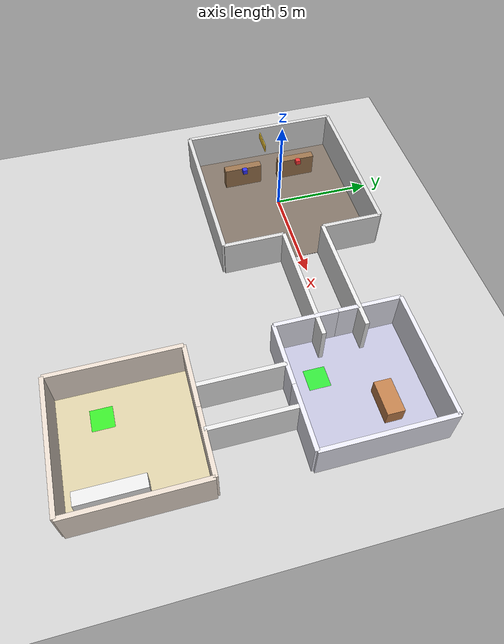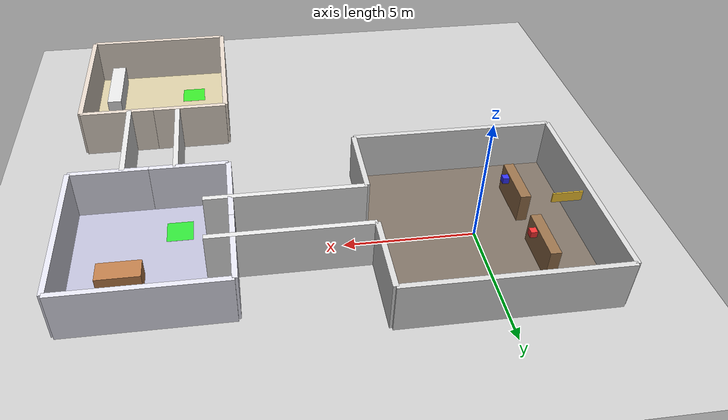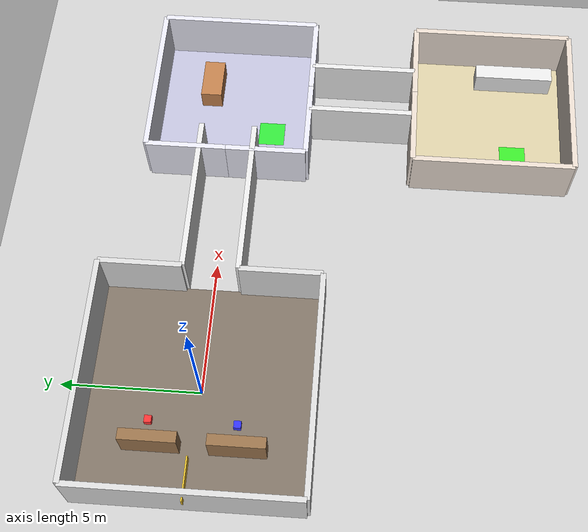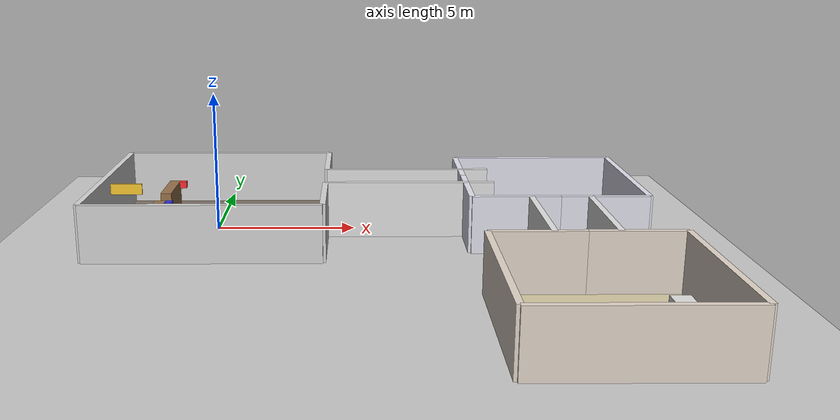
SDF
<?xml version="1.0" ?>
<sdf version="1.6">
  <world name="logistics_world">

    <!-- Physics -->
    <physics type="ode">
      <real_time_update_rate>1000.0</real_time_update_rate>
      <max_step_size>0.001</max_step_size>
      <real_time_factor>1</real_time_factor>
    </physics>

    <!-- Lighting -->
    <light name="sun" type="directional">
      <cast_shadows>true</cast_shadows>
      <pose>0 0 10 0 0 0</pose>
      <diffuse>0.8 0.8 0.8 1</diffuse>
      <specular>0.2 0.2 0.2 1</specular>
      <direction>-0.5 0.1 -0.9</direction>
    </light>

    <light name="ceiling_light_warehouse" type="point">
      <pose>0 0 4 0 0 0</pose>
      <diffuse>1.0 0.95 0.8 1</diffuse>
      <specular>0.1 0.1 0.1 1</specular>
      <attenuation>
        <range>20</range>
        <linear>0.05</linear>
      </attenuation>
    </light>

    <!-- Ground plane -->
    <model name="ground_plane">
      <static>true</static>
      <link name="link">
        <collision name="collision">
          <geometry><plane><normal>0 0 1</normal><size>100 100</size></plane></geometry>
          <surface><friction><ode><mu>100</mu><mu2>50</mu2></ode></friction></surface>
        </collision>
        <visual name="visual">
          <cast_shadows>false</cast_shadows>
          <geometry><plane><normal>0 0 1</normal><size>100 100</size></plane></geometry>
          <material>
            <script>
              <uri>file://media/materials/scripts/gazebo.material</uri>
              <name>Gazebo/Grey</name>
            </script>
          </material>
        </visual>
      </link>
    </model>

    <!-- ═══════════════════════════════════════════════
         WAREHOUSE ROOM  (center: 0, 0)  8×8 m
         ═══════════════════════════════════════════════ -->

    <!-- Warehouse floor (darker) -->
    <model name="warehouse_floor">
      <static>true</static>
      <pose>0 0 0.01 0 0 0</pose>
      <link name="link">
        <visual name="visual">
          <geometry><box><size>8 8 0.02</size></box></geometry>
          <material><ambient>0.4 0.35 0.3 1</ambient><diffuse>0.5 0.45 0.4 1</diffuse></material>
        </visual>
      </link>
    </model>

    <!-- Warehouse label -->
    <model name="warehouse_sign">
      <static>true</static>
      <pose>-3.5 0 1.5 0 0 1.5708</pose>
      <link name="link">
        <visual name="visual">
          <geometry><box><size>0.05 1.5 0.4</size></box></geometry>
          <material><ambient>0.8 0.6 0.1 1</ambient><diffuse>1.0 0.8 0.2 1</diffuse></material>
        </visual>
      </link>
    </model>

    <!-- Warehouse walls -->
    <model name="warehouse_wall_north">
      <static>true</static><pose>0 4 1 0 0 0</pose>
      <link name="link">
        <collision name="c"><geometry><box><size>8 0.2 2</size></box></geometry></collision>
        <visual name="v"><geometry><box><size>8 0.2 2</size></box></geometry>
          <material><ambient>0.85 0.85 0.85 1</ambient></material></visual>
      </link>
    </model>
    <model name="warehouse_wall_south">
      <static>true</static><pose>0 -4 1 0 0 0</pose>
      <link name="link">
        <collision name="c"><geometry><box><size>8 0.2 2</size></box></geometry></collision>
        <visual name="v"><geometry><box><size>8 0.2 2</size></box></geometry>
          <material><ambient>0.85 0.85 0.85 1</ambient></material></visual>
      </link>
    </model>
    <model name="warehouse_wall_west">
      <static>true</static><pose>-4 0 1 0 0 0</pose>
      <link name="link">
        <collision name="c"><geometry><box><size>0.2 8 2</size></box></geometry></collision>
        <visual name="v"><geometry><box><size>0.2 8 2</size></box></geometry>
          <material><ambient>0.85 0.85 0.85 1</ambient></material></visual>
      </link>
    </model>
    <!-- East wall of warehouse has a doorway gap to office corridor -->
    <model name="warehouse_wall_east_top">
      <static>true</static><pose>4 2.5 1 0 0 0</pose>
      <link name="link">
        <collision name="c"><geometry><box><size>0.2 3 2</size></box></geometry></collision>
        <visual name="v"><geometry><box><size>0.2 3 2</size></box></geometry>
          <material><ambient>0.85 0.85 0.85 1</ambient></material></visual>
      </link>
    </model>
    <model name="warehouse_wall_east_bottom">
      <static>true</static><pose>4 -2.5 1 0 0 0</pose>
      <link name="link">
        <collision name="c"><geometry><box><size>0.2 3 2</size></box></geometry></collision>
        <visual name="v"><geometry><box><size>0.2 3 2</size></box></geometry>
          <material><ambient>0.85 0.85 0.85 1</ambient></material></visual>
      </link>
    </model>

    <!-- Warehouse shelves -->
    <model name="shelf_1">
      <static>true</static><pose>-2 1.5 0.6 0 0 0</pose>
      <link name="link">
        <collision name="c"><geometry><box><size>0.4 2.0 1.2</size></box></geometry></collision>
        <visual name="v"><geometry><box><size>0.4 2.0 1.2</size></box></geometry>
          <material><ambient>0.5 0.35 0.2 1</ambient><diffuse>0.6 0.45 0.3 1</diffuse></material></visual>
      </link>
    </model>
    <model name="shelf_2">
      <static>true</static><pose>-2 -1.5 0.6 0 0 0</pose>
      <link name="link">
        <collision name="c"><geometry><box><size>0.4 2.0 1.2</size></box></geometry></collision>
        <visual name="v"><geometry><box><size>0.4 2.0 1.2</size></box></geometry>
          <material><ambient>0.5 0.35 0.2 1</ambient><diffuse>0.6 0.45 0.3 1</diffuse></material></visual>
      </link>
    </model>

    <!-- Package 1 (red box) -->
    <model name="package1">
      <static>false</static><pose>-1.5 1.5 1.3 0 0 0</pose>
      <link name="link">
        <inertial><mass>1.0</mass><inertia><ixx>0.01</ixx><iyy>0.01</iyy><izz>0.01</izz></inertia></inertial>
        <collision name="c"><geometry><box><size>0.25 0.25 0.25</size></box></geometry></collision>
        <visual name="v"><geometry><box><size>0.25 0.25 0.25</size></box></geometry>
          <material><ambient>0.8 0.1 0.1 1</ambient><diffuse>1.0 0.2 0.2 1</diffuse></material></visual>
      </link>
    </model>

    <!-- Package 2 (blue box) -->
    <model name="package2">
      <static>false</static><pose>-1.5 -1.5 1.3 0 0 0</pose>
      <link name="link">
        <inertial><mass>1.0</mass><inertia><ixx>0.01</ixx><iyy>0.01</iyy><izz>0.01</izz></inertia></inertial>
        <collision name="c"><geometry><box><size>0.25 0.25 0.25</size></box></geometry></collision>
        <visual name="v"><geometry><box><size>0.25 0.25 0.25</size></box></geometry>
          <material><ambient>0.1 0.1 0.8 1</ambient><diffuse>0.2 0.2 1.0 1</diffuse></material></visual>
      </link>
    </model>

    <!-- ═══════════════════════════════════════════════
         CORRIDOR  warehouse->office  (x: 4->10, y: -1->1)
         ═══════════════════════════════════════════════ -->
    <model name="corridor_wall_north">
      <static>true</static><pose>7 1 1 0 0 0</pose>
      <link name="link">
        <collision name="c"><geometry><box><size>6 0.2 2</size></box></geometry></collision>
        <visual name="v"><geometry><box><size>6 0.2 2</size></box></geometry>
          <material><ambient>0.9 0.9 0.9 1</ambient></material></visual>
      </link>
    </model>
    <model name="corridor_wall_south">
      <static>true</static><pose>7 -1 1 0 0 0</pose>
      <link name="link">
        <collision name="c"><geometry><box><size>6 0.2 2</size></box></geometry></collision>
        <visual name="v"><geometry><box><size>6 0.2 2</size></box></geometry>
          <material><ambient>0.9 0.9 0.9 1</ambient></material></visual>
      </link>
    </model>

    <!-- ═══════════════════════════════════════════════
         OFFICE ROOM  (center: 12, 0)  6×6 m
         ═══════════════════════════════════════════════ -->
    <model name="office_floor">
      <static>true</static><pose>12 0 0.01 0 0 0</pose>
      <link name="link">
        <visual name="visual">
          <geometry><box><size>6 6 0.02</size></box></geometry>
          <material><ambient>0.6 0.6 0.7 1</ambient><diffuse>0.75 0.75 0.85 1</diffuse></material>
        </visual>
      </link>
    </model>

    <model name="office_wall_north">
      <static>true</static><pose>12 3 1 0 0 0</pose>
      <link name="link">
        <collision name="c"><geometry><box><size>6 0.2 2</size></box></geometry></collision>
        <visual name="v"><geometry><box><size>6 0.2 2</size></box></geometry>
          <material><ambient>0.9 0.9 0.95 1</ambient></material></visual>
      </link>
    </model>
    <model name="office_wall_east">
      <static>true</static><pose>15 0 1 0 0 0</pose>
      <link name="link">
        <collision name="c"><geometry><box><size>0.2 6 2</size></box></geometry></collision>
        <visual name="v"><geometry><box><size>0.2 6 2</size></box></geometry>
          <material><ambient>0.9 0.9 0.95 1</ambient></material></visual>
      </link>
    </model>
    <!-- Office south wall with doorway to kitchen corridor -->
    <model name="office_wall_south_left">
      <static>true</static><pose>10.5 -3 1 0 0 0</pose>
      <link name="link">
        <collision name="c"><geometry><box><size>3 0.2 2</size></box></geometry></collision>
        <visual name="v"><geometry><box><size>3 0.2 2</size></box></geometry>
          <material><ambient>0.9 0.9 0.95 1</ambient></material></visual>
      </link>
    </model>
    <model name="office_wall_south_right">
      <static>true</static><pose>13.5 -3 1 0 0 0</pose>
      <link name="link">
        <collision name="c"><geometry><box><size>3 0.2 2</size></box></geometry></collision>
        <visual name="v"><geometry><box><size>3 0.2 2</size></box></geometry>
          <material><ambient>0.9 0.9 0.95 1</ambient></material></visual>
      </link>
    </model>
    <!-- Office west wall with doorway -->
    <model name="office_wall_west_top">
      <static>true</static><pose>9 1.5 1 0 0 0</pose>
      <link name="link">
        <collision name="c"><geometry><box><size>0.2 3 2</size></box></geometry></collision>
        <visual name="v"><geometry><box><size>0.2 3 2</size></box></geometry>
          <material><ambient>0.9 0.9 0.95 1</ambient></material></visual>
      </link>
    </model>
    <model name="office_wall_west_bottom">
      <static>true</static><pose>9 -1.5 1 0 0 0</pose>
      <link name="link">
        <collision name="c"><geometry><box><size>0.2 3 2</size></box></geometry></collision>
        <visual name="v"><geometry><box><size>0.2 3 2</size></box></geometry>
          <material><ambient>0.9 0.9 0.95 1</ambient></material></visual>
      </link>
    </model>

    <!-- Office desk -->
    <model name="office_desk">
      <static>true</static><pose>13 1 0.4 0 0 0</pose>
      <link name="link">
        <collision name="c"><geometry><box><size>1.6 0.8 0.8</size></box></geometry></collision>
        <visual name="v"><geometry><box><size>1.6 0.8 0.8</size></box></geometry>
          <material><ambient>0.6 0.4 0.2 1</ambient><diffuse>0.75 0.5 0.3 1</diffuse></material></visual>
      </link>
    </model>

    <!-- Delivery zone marker (office) -->
    <model name="office_delivery_zone">
      <static>true</static><pose>11 -1.5 0.02 0 0 0</pose>
      <link name="link">
        <visual name="v">
          <geometry><box><size>1.0 1.0 0.01</size></box></geometry>
          <material><ambient>0.0 0.8 0.0 1</ambient><diffuse>0.0 1.0 0.0 0.7</diffuse></material>
        </visual>
      </link>
    </model>

    <!-- ═══════════════════════════════════════════════
         CORRIDOR  office->kitchen  (x: 11->13, y: -3->-7)
         ═══════════════════════════════════════════════ -->
    <model name="corridor2_wall_west">
      <static>true</static><pose>11 -5 1 0 0 0</pose>
      <link name="link">
        <collision name="c"><geometry><box><size>0.2 4 2</size></box></geometry></collision>
        <visual name="v"><geometry><box><size>0.2 4 2</size></box></geometry>
          <material><ambient>0.9 0.9 0.9 1</ambient></material></visual>
      </link>
    </model>
    <model name="corridor2_wall_east">
      <static>true</static><pose>13 -5 1 0 0 0</pose>
      <link name="link">
        <collision name="c"><geometry><box><size>0.2 4 2</size></box></geometry></collision>
        <visual name="v"><geometry><box><size>0.2 4 2</size></box></geometry>
          <material><ambient>0.9 0.9 0.9 1</ambient></material></visual>
      </link>
    </model>

    <!-- ═══════════════════════════════════════════════
         KITCHEN ROOM  (center: 12, -10)  6×6 m
         ═══════════════════════════════════════════════ -->
    <model name="kitchen_floor">
      <static>true</static><pose>12 -10 0.01 0 0 0</pose>
      <link name="link">
        <visual name="visual">
          <geometry><box><size>6 6 0.02</size></box></geometry>
          <material><ambient>0.7 0.65 0.5 1</ambient><diffuse>0.85 0.8 0.65 1</diffuse></material>
        </visual>
      </link>
    </model>

    <model name="kitchen_wall_south">
      <static>true</static><pose>12 -13 1 0 0 0</pose>
      <link name="link">
        <collision name="c"><geometry><box><size>6 0.2 2</size></box></geometry></collision>
        <visual name="v"><geometry><box><size>6 0.2 2</size></box></geometry>
          <material><ambient>0.9 0.85 0.8 1</ambient></material></visual>
      </link>
    </model>
    <model name="kitchen_wall_east">
      <static>true</static><pose>15 -10 1 0 0 0</pose>
      <link name="link">
        <collision name="c"><geometry><box><size>0.2 6 2</size></box></geometry></collision>
        <visual name="v"><geometry><box><size>0.2 6 2</size></box></geometry>
          <material><ambient>0.9 0.85 0.8 1</ambient></material></visual>
      </link>
    </model>
    <model name="kitchen_wall_west">
      <static>true</static><pose>9 -10 1 0 0 0</pose>
      <link name="link">
        <collision name="c"><geometry><box><size>0.2 6 2</size></box></geometry></collision>
        <visual name="v"><geometry><box><size>0.2 6 2</size></box></geometry>
          <material><ambient>0.9 0.85 0.8 1</ambient></material></visual>
      </link>
    </model>
    <model name="kitchen_wall_north_left">
      <static>true</static><pose>10.5 -7 1 0 0 0</pose>
      <link name="link">
        <collision name="c"><geometry><box><size>3 0.2 2</size></box></geometry></collision>
        <visual name="v"><geometry><box><size>3 0.2 2</size></box></geometry>
          <material><ambient>0.9 0.85 0.8 1</ambient></material></visual>
      </link>
    </model>
    <model name="kitchen_wall_north_right">
      <static>true</static><pose>13.5 -7 1 0 0 0</pose>
      <link name="link">
        <collision name="c"><geometry><box><size>3 0.2 2</size></box></geometry></collision>
        <visual name="v"><geometry><box><size>3 0.2 2</size></box></geometry>
          <material><ambient>0.9 0.85 0.8 1</ambient></material></visual>
      </link>
    </model>

    <!-- Kitchen counter -->
    <model name="kitchen_counter">
      <static>true</static><pose>14 -11 0.45 0 0 0</pose>
      <link name="link">
        <collision name="c"><geometry><box><size>0.6 3 0.9</size></box></geometry></collision>
        <visual name="v"><geometry><box><size>0.6 3 0.9</size></box></geometry>
          <material><ambient>0.8 0.8 0.8 1</ambient><diffuse>0.9 0.9 0.9 1</diffuse></material></visual>
      </link>
    </model>

    <!-- Delivery zone marker (kitchen) -->
    <model name="kitchen_delivery_zone">
      <static>true</static><pose>10.5 -11 0.02 0 0 0</pose>
      <link name="link">
        <visual name="v">
          <geometry><box><size>1.0 1.0 0.01</size></box></geometry>
          <material><ambient>0.0 0.8 0.0 1</ambient><diffuse>0.0 1.0 0.0 0.7</diffuse></material>
        </visual>
      </link>
    </model>

  </world>
</sdf>
